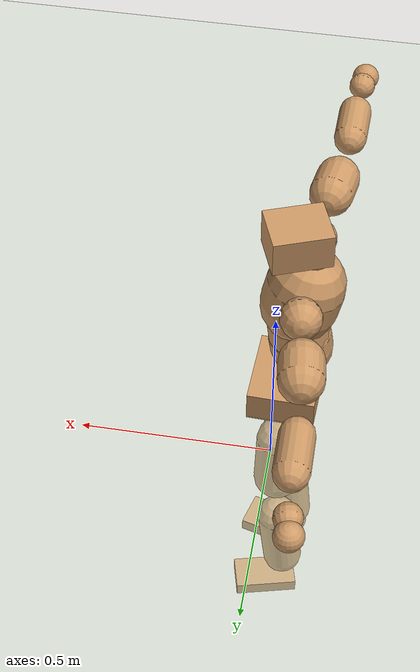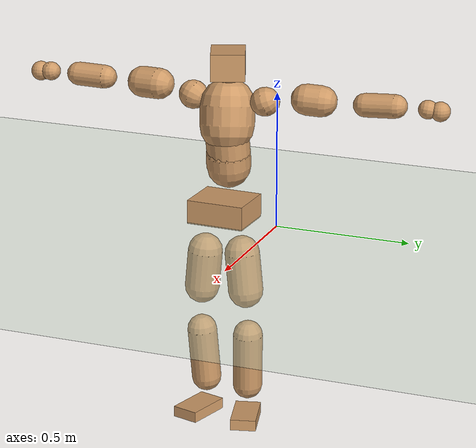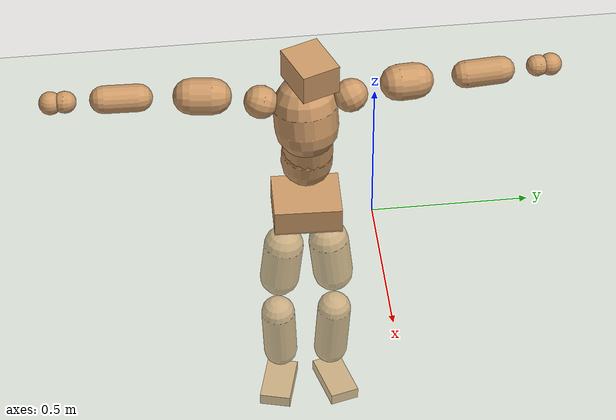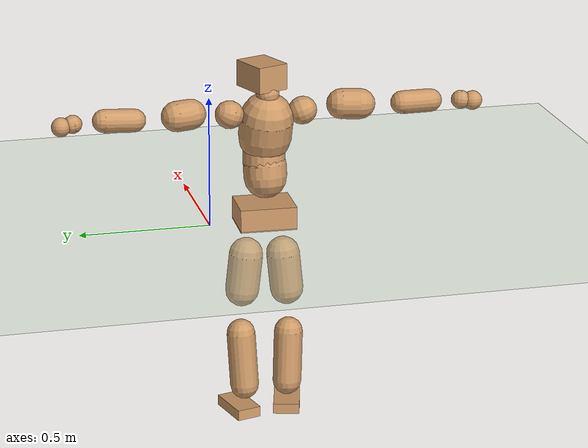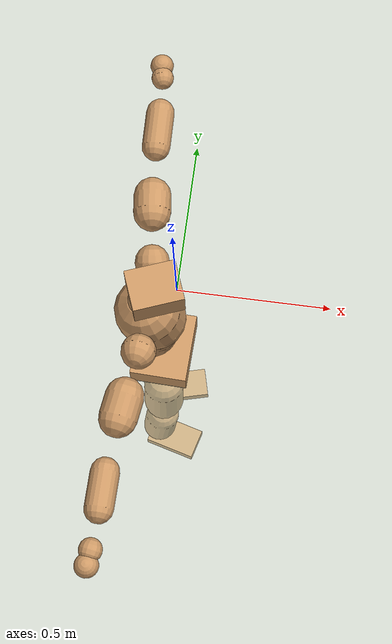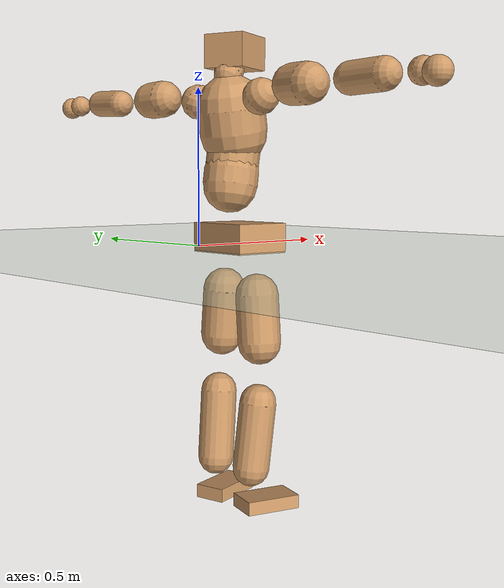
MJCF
<mujoco model="humanoid">
  <compiler coordinate="local" angle="radian"/>
  <default>
    <joint damping="0.0" armature="0.01" stiffness="0.0" limited="true"/>
    <geom conaffinity="1" condim="3" contype="7" margin="0.001" rgba="0.8 0.6 .4 1"/>
  </default>
  <asset>
    <texture type="skybox" builtin="gradient" rgb1=".4 .5 .6" rgb2="0 0 0" width="100" height="100"/>
    <texture builtin="flat" height="1278" mark="cross" markrgb="1 1 1" name="texgeom" random="0.01" rgb1="0.8 0.6 0.4" rgb2="0.8 0.6 0.4" type="cube" width="127"/>
    <texture builtin="checker" height="100" name="texplane" rgb1="0 0 0" rgb2="0.8 0.8 0.8" type="2d" width="100"/>
    <material name="MatPlane" reflectance="0.5" shininess="1" specular="1" texrepeat="60 60" texture="texplane"/>
    <material name="geom" texture="texgeom" texuniform="true"/>
  </asset>
  <worldbody>
    <light cutoff="100" diffuse="1 1 1" dir="-0 0 -1.3" directional="true" exponent="1" pos="0 0 1.3" specular=".1 .1 .1"/>
    <geom conaffinity="1" condim="3" name="floor" pos="0 0 0" rgba="0.8 0.9 0.8 1" size="100 100 .2" type="plane" material="MatPlane"/>
    <body name="Pelvis" pos="-0.0015 -0.2088 0.0452">
      <freejoint name="Pelvis"/>
      <geom type="box" contype="1" conaffinity="1" density="5359.374988" pos="-0.0106 0.0004 -0.0071" size="0.0891 0.1076 0.0442" quat="0.9998 0.0000 0.0000 -0.0175" name="Pelvis"/>
      <body name="L_Hip" pos="-0.0099 0.062 -0.0749">
        <joint name="L_Hip_x" type="hinge" pos="0 0 0" axis="1 0 0" stiffness="1600" damping="160" armature="0.02" range="-180.0000 180.0000"/>
        <joint name="L_Hip_y" type="hinge" pos="0 0 0" axis="0 1 0" stiffness="1600" damping="160" armature="0.02" range="-180.0000 180.0000"/>
        <joint name="L_Hip_z" type="hinge" pos="0 0 0" axis="0 0 1" stiffness="1600" damping="160" armature="0.02" range="-180.0000 180.0000"/>
        <geom type="capsule" contype="1" conaffinity="1" density="2040.816327" size="0.0646" fromto="0.0018 0.0100 -0.0941 0.0046 0.0253 -0.2373" name="L_Hip"/>
        <body name="L_Knee" pos="0.0064 0.0354 -0.3313">
          <joint name="L_Knee_x" type="hinge" pos="0 0 0" axis="1 0 0" stiffness="1600" damping="160" armature="0.02" range="-180.0000 180.0000"/>
          <joint name="L_Knee_y" type="hinge" pos="0 0 0" axis="0 1 0" stiffness="1600" damping="160" armature="0.02" range="-180.0000 180.0000"/>
          <joint name="L_Knee_z" type="hinge" pos="0 0 0" axis="0 0 1" stiffness="1600" damping="160" armature="0.02" range="-180.0000 180.0000"/>
          <geom type="capsule" contype="1" conaffinity="1" density="1234.567901" size="0.055" fromto="-0.0082 -0.0035 -0.0846 -0.0282 -0.0122 -0.2921" name="L_Knee"/>
          <body name="L_Ankle" pos="-0.0364 -0.0157 -0.3767">
            <joint name="L_Ankle_x" type="hinge" pos="0 0 0" axis="1 0 0" stiffness="1600" damping="160" armature="0.02" range="-180.0000 180.0000"/>
            <joint name="L_Ankle_y" type="hinge" pos="0 0 0" axis="0 1 0" stiffness="1600" damping="160" armature="0.02" range="-180.0000 180.0000"/>
            <joint name="L_Ankle_z" type="hinge" pos="0 0 0" axis="0 0 1" stiffness="1600" damping="160" armature="0.02" range="-180.0000 180.0000"/>
            <geom type="box" contype="1" conaffinity="1" density="999.999987" pos="0.0569 0.0148 -0.0261" size="0.0871 0.0475 0.0204" quat="0.9919 0.0000 0.0000 0.1270" name="L_Ankle"/>
            <body name="L_Toe" pos="0.1137 0.0296 -0.0522">
              <joint name="L_Toe_x" type="hinge" pos="0 0 0" axis="1 0 0" stiffness="1000" damping="100" armature="0.02" range="-180.0000 180.0000"/>
              <joint name="L_Toe_y" type="hinge" pos="0 0 0" axis="0 1 0" stiffness="1000" damping="100" armature="0.02" range="-180.0000 180.0000"/>
              <joint name="L_Toe_z" type="hinge" pos="0 0 0" axis="0 0 1" stiffness="1000" damping="100" armature="0.02" range="-180.0000 180.0000"/>
              <geom type="box" contype="1" conaffinity="1" density="9000226.375132" pos="0.0000 0.0000 0.0240" size="0.001 0.0024 0.0009" quat="0.9911 0.0000 0.0000 0.1329" name="L_Toe"/>
            </body>
          </body>
        </body>
      </body>
      <body name="R_Hip" pos="-0.0042 -0.0637 -0.0828">
        <joint name="R_Hip_x" type="hinge" pos="0 0 0" axis="1 0 0" stiffness="1600" damping="160" armature="0.02" range="-180.0000 180.0000"/>
        <joint name="R_Hip_y" type="hinge" pos="0 0 0" axis="0 1 0" stiffness="1600" damping="160" armature="0.02" range="-180.0000 180.0000"/>
        <joint name="R_Hip_z" type="hinge" pos="0 0 0" axis="0 0 1" stiffness="1600" damping="160" armature="0.02" range="-180.0000 180.0000"/>
        <geom type="capsule" contype="1" conaffinity="1" density="2040.816327" size="0.0641" fromto="-0.0017 -0.0094 -0.0936 -0.0043 -0.0236 -0.2357" name="R_Hip"/>
        <body name="R_Knee" pos="-0.006 -0.0329 -0.3293">
          <joint name="R_Knee_x" type="hinge" pos="0 0 0" axis="1 0 0" stiffness="1600" damping="160" armature="0.02" range="-180.0000 180.0000"/>
          <joint name="R_Knee_y" type="hinge" pos="0 0 0" axis="0 1 0" stiffness="1600" damping="160" armature="0.02" range="-180.0000 180.0000"/>
          <joint name="R_Knee_z" type="hinge" pos="0 0 0" axis="0 0 1" stiffness="1600" damping="160" armature="0.02" range="-180.0000 180.0000"/>
          <geom type="capsule" contype="1" conaffinity="1" density="1234.567901" size="0.0552" fromto="-0.0079 0.0041 -0.0847 -0.0264 0.0136 -0.2822" name="R_Knee"/>
          <body name="R_Ankle" pos="-0.0344 0.0176 -0.3669">
            <joint name="R_Ankle_x" type="hinge" pos="0 0 0" axis="1 0 0" stiffness="1600" damping="160" armature="0.02" range="-180.0000 180.0000"/>
            <joint name="R_Ankle_y" type="hinge" pos="0 0 0" axis="0 1 0" stiffness="1600" damping="160" armature="0.02" range="-180.0000 180.0000"/>
            <joint name="R_Ankle_z" type="hinge" pos="0 0 0" axis="0 0 1" stiffness="1600" damping="160" armature="0.02" range="-180.0000 180.0000"/>
            <geom type="box" contype="1" conaffinity="1" density="1000.000057" pos="0.0604 -0.0162 -0.0258" size="0.0849 0.0505 0.0202" quat="0.9914 0.0000 0.0000 -0.1311" name="R_Ankle"/>
            <body name="R_Toe" pos="0.1207 -0.0325 -0.0516">
              <joint name="R_Toe_x" type="hinge" pos="0 0 0" axis="1 0 0" stiffness="1000" damping="100" armature="0.02" range="-180.0000 180.0000"/>
              <joint name="R_Toe_y" type="hinge" pos="0 0 0" axis="0 1 0" stiffness="1000" damping="100" armature="0.02" range="-180.0000 180.0000"/>
              <joint name="R_Toe_z" type="hinge" pos="0 0 0" axis="0 0 1" stiffness="1000" damping="100" armature="0.02" range="-180.0000 180.0000"/>
              <geom type="box" contype="1" conaffinity="1" density="8257939.722085" pos="0.0000 0.0000 0.0246" size="0.0011 0.0026 0.0009" quat="0.9926 0.0000 0.0000 -0.1215" name="R_Toe"/>
            </body>
          </body>
        </body>
      </body>
      <body name="Torso" pos="-0.0497 0.0039 0.1153">
        <joint name="Torso_x" type="hinge" pos="0 0 0" axis="1 0 0" stiffness="2000" damping="200" armature="0.02" range="-180.0000 180.0000"/>
        <joint name="Torso_y" type="hinge" pos="0 0 0" axis="0 1 0" stiffness="2000" damping="200" armature="0.02" range="-180.0000 180.0000"/>
        <joint name="Torso_z" type="hinge" pos="0 0 0" axis="0 0 1" stiffness="2000" damping="200" armature="0.02" range="-180.0000 180.0000"/>
        <geom type="capsule" contype="1" conaffinity="1" density="2040.816327" size="0.0818" fromto="0.0124 0.0020 0.0808 0.0052 0.0009 0.0341" name="Torso"/>
        <body name="Spine" pos="0.0177 0.0029 0.1149">
          <joint name="Spine_x" type="hinge" pos="0 0 0" axis="1 0 0" stiffness="2000" damping="200" armature="0.02" range="-180.0000 180.0000"/>
          <joint name="Spine_y" type="hinge" pos="0 0 0" axis="0 1 0" stiffness="2000" damping="200" armature="0.02" range="-180.0000 180.0000"/>
          <joint name="Spine_z" type="hinge" pos="0 0 0" axis="0 0 1" stiffness="2000" damping="200" armature="0.02" range="-180.0000 180.0000"/>
          <geom type="capsule" contype="1" conaffinity="1" density="2040.816327" size="0.0796" fromto="0.0105 -0.0029 0.0788 -0.0043 0.0012 -0.0325" name="Spine"/>
          <body name="Chest" pos="0.0062 -0.0017 0.0463">
            <joint name="Chest_x" type="hinge" pos="0 0 0" axis="1 0 0" stiffness="2000" damping="200" armature="0.02" range="-180.0000 180.0000"/>
            <joint name="Chest_y" type="hinge" pos="0 0 0" axis="0 1 0" stiffness="2000" damping="200" armature="0.02" range="-180.0000 180.0000"/>
            <joint name="Chest_z" type="hinge" pos="0 0 0" axis="0 0 1" stiffness="2000" damping="200" armature="0.02" range="-180.0000 180.0000"/>
            <geom type="capsule" contype="1" conaffinity="1" density="2040.816327" size="0.1006" fromto="-0.0204 -0.0051 0.0984 -0.0060 -0.0015 0.0289" name="Chest"/>
            <body name="Neck" pos="-0.0436 -0.0108 0.1776">
              <joint name="Neck_x" type="hinge" pos="0 0 0" axis="1 0 0" stiffness="1000" damping="100" armature="0.02" range="-180.0000 180.0000"/>
              <joint name="Neck_y" type="hinge" pos="0 0 0" axis="0 1 0" stiffness="1000" damping="100" armature="0.02" range="-180.0000 180.0000"/>
              <joint name="Neck_z" type="hinge" pos="0 0 0" axis="0 0 1" stiffness="1000" damping="100" armature="0.02" range="-180.0000 180.0000"/>
              <geom type="capsule" contype="1" conaffinity="1" density="1000" size="0.0428" fromto="0.0212 0.0073 0.0364 0.0113 0.0039 0.0194" name="Neck"/>
              <body name="Head" pos="0.0324 0.0112 0.0558">
                <joint name="Head_x" type="hinge" pos="0 0 0" axis="1 0 0" stiffness="1000" damping="100" armature="0.02" range="-180.0000 180.0000"/>
                <joint name="Head_y" type="hinge" pos="0 0 0" axis="0 1 0" stiffness="1000" damping="100" armature="0.02" range="-180.0000 180.0000"/>
                <joint name="Head_z" type="hinge" pos="0 0 0" axis="0 0 1" stiffness="1000" damping="100" armature="0.02" range="-180.0000 180.0000"/>
                <geom type="box" contype="1" conaffinity="1" density="2250.000185" pos="0.0172 0.0066 0.0289" size="0.0758 0.0618 0.049" quat="0.9832 0.0000 0.0000 0.1825" name="Head"/>
              </body>
            </body>
            <body name="L_Thorax" pos="-0.0146 0.0733 0.1035">
              <joint name="L_Thorax_x" type="hinge" pos="0 0 0" axis="1 0 0" stiffness="1000" damping="100" armature="0.02" range="-180.0000 180.0000"/>
              <joint name="L_Thorax_y" type="hinge" pos="0 0 0" axis="0 1 0" stiffness="1000" damping="100" armature="0.02" range="-180.0000 180.0000"/>
              <joint name="L_Thorax_z" type="hinge" pos="0 0 0" axis="0 0 1" stiffness="1000" damping="100" armature="0.02" range="-180.0000 180.0000"/>
              <geom type="capsule" contype="1" conaffinity="1" density="1000" size="0.053" fromto="-0.0104 0.0632 0.0217 -0.0107 0.0650 0.0224" name="L_Thorax"/>
              <body name="L_Shoulder" pos="-0.0211 0.1282 0.0441">
                <joint name="L_Shoulder_x" type="hinge" pos="0 0 0" axis="1 0 0" stiffness="1000" damping="100" armature="0.02" range="-720.0000 720.0000"/>
                <joint name="L_Shoulder_y" type="hinge" pos="0 0 0" axis="0 1 0" stiffness="1000" damping="100" armature="0.02" range="-720.0000 720.0000"/>
                <joint name="L_Shoulder_z" type="hinge" pos="0 0 0" axis="0 0 1" stiffness="1000" damping="100" armature="0.02" range="-720.0000 720.0000"/>
                <geom type="capsule" contype="1" conaffinity="1" density="1000" size="0.057" fromto="-0.0104 0.0862 -0.0040 -0.0169 0.1400 -0.0065" name="L_Shoulder"/>
                <body name="L_Elbow" pos="-0.0274 0.2262 -0.0105">
                  <joint name="L_Elbow_x" type="hinge" pos="0 0 0" axis="1 0 0" stiffness="1000" damping="100" armature="0.02" range="-720.0000 720.0000"/>
                  <joint name="L_Elbow_y" type="hinge" pos="0 0 0" axis="0 1 0" stiffness="1000" damping="100" armature="0.02" range="-720.0000 720.0000"/>
                  <joint name="L_Elbow_z" type="hinge" pos="0 0 0" axis="0 0 1" stiffness="1000" damping="100" armature="0.02" range="-720.0000 720.0000"/>
                  <geom type="capsule" contype="1" conaffinity="1" density="1000" size="0.0431" fromto="-0.0014 0.0729 0.0040 -0.0035 0.1839 0.0100" name="L_Elbow"/>
                  <body name="L_Wrist" pos="-0.0049 0.2568 0.014">
                    <joint name="L_Wrist_x" type="hinge" pos="0 0 0" axis="1 0 0" stiffness="600" damping="60" armature="0.02" range="-180.0000 180.0000"/>
                    <joint name="L_Wrist_y" type="hinge" pos="0 0 0" axis="0 1 0" stiffness="600" damping="60" armature="0.02" range="-180.0000 180.0000"/>
                    <joint name="L_Wrist_z" type="hinge" pos="0 0 0" axis="0 0 1" stiffness="600" damping="60" armature="0.02" range="-180.0000 180.0000"/>
                    <geom type="capsule" contype="1" conaffinity="1" density="1000" size="0.0339" fromto="-0.0076 0.0424 -0.0052 -0.0080 0.0443 -0.0055" name="L_Wrist"/>
                    <body name="L_Hand" pos="-0.0156 0.0867 -0.0107">
                      <joint name="L_Hand_x" type="hinge" pos="0 0 0" axis="1 0 0" stiffness="600" damping="60" armature="0.02" range="-180.0000 180.0000"/>
                      <joint name="L_Hand_y" type="hinge" pos="0 0 0" axis="0 1 0" stiffness="600" damping="60" armature="0.02" range="-180.0000 180.0000"/>
                      <joint name="L_Hand_z" type="hinge" pos="0 0 0" axis="0 0 1" stiffness="600" damping="60" armature="0.02" range="-180.0000 180.0000"/>
                      <geom type="sphere" contype="1" conaffinity="1" density="1000" size="0.0354" pos="0.0000 0.0000 0.0000" name="L_Hand"/>
                    </body>
                  </body>
                </body>
              </body>
            </body>
            <body name="R_Thorax" pos="-0.0208 -0.0823 0.1009">
              <joint name="R_Thorax_x" type="hinge" pos="0 0 0" axis="1 0 0" stiffness="1000" damping="100" armature="0.02" range="-180.0000 180.0000"/>
              <joint name="R_Thorax_y" type="hinge" pos="0 0 0" axis="0 1 0" stiffness="1000" damping="100" armature="0.02" range="-180.0000 180.0000"/>
              <joint name="R_Thorax_z" type="hinge" pos="0 0 0" axis="0 0 1" stiffness="1000" damping="100" armature="0.02" range="-180.0000 180.0000"/>
              <geom type="capsule" contype="1" conaffinity="1" density="1000" size="0.0526" fromto="-0.0058 -0.0576 0.0228 -0.0060 -0.0595 0.0235" name="R_Thorax"/>
              <body name="R_Shoulder" pos="-0.0117 -0.1171 0.0463">
                <joint name="R_Shoulder_x" type="hinge" pos="0 0 0" axis="1 0 0" stiffness="1000" damping="100" armature="0.02" range="-720.0000 720.0000"/>
                <joint name="R_Shoulder_y" type="hinge" pos="0 0 0" axis="0 1 0" stiffness="1000" damping="100" armature="0.02" range="-720.0000 720.0000"/>
                <joint name="R_Shoulder_z" type="hinge" pos="0 0 0" axis="0 0 1" stiffness="1000" damping="100" armature="0.02" range="-720.0000 720.0000"/>
                <geom type="capsule" contype="1" conaffinity="1" density="1000" size="0.0574" fromto="-0.0128 -0.0865 -0.0026 -0.0227 -0.1538 -0.0046" name="R_Shoulder"/>
                <body name="R_Elbow" pos="-0.0355 -0.2403 -0.0072">
                  <joint name="R_Elbow_x" type="hinge" pos="0 0 0" axis="1 0 0" stiffness="1000" damping="100" armature="0.02" range="-720.0000 720.0000"/>
                  <joint name="R_Elbow_y" type="hinge" pos="0 0 0" axis="0 1 0" stiffness="1000" damping="100" armature="0.02" range="-720.0000 720.0000"/>
                  <joint name="R_Elbow_z" type="hinge" pos="0 0 0" axis="0 0 1" stiffness="1000" damping="100" armature="0.02" range="-720.0000 720.0000"/>
                  <geom type="capsule" contype="1" conaffinity="1" density="1000" size="0.0434" fromto="-0.0010 -0.0734 0.0010 -0.0025 -0.1820 0.0024" name="R_Elbow"/>
                  <body name="R_Wrist" pos="-0.0035 -0.2554 0.0034">
                    <joint name="R_Wrist_x" type="hinge" pos="0 0 0" axis="1 0 0" stiffness="600" damping="60" armature="0.02" range="-180.0000 180.0000"/>
                    <joint name="R_Wrist_y" type="hinge" pos="0 0 0" axis="0 1 0" stiffness="600" damping="60" armature="0.02" range="-180.0000 180.0000"/>
                    <joint name="R_Wrist_z" type="hinge" pos="0 0 0" axis="0 0 1" stiffness="600" damping="60" armature="0.02" range="-180.0000 180.0000"/>
                    <geom type="capsule" contype="1" conaffinity="1" density="1000" size="0.035" fromto="-0.0050 -0.0438 -0.0045 -0.0053 -0.0457 -0.0047" name="R_Wrist"/>
                    <body name="R_Hand" pos="-0.0103 -0.0895 -0.0091">
                      <joint name="R_Hand_x" type="hinge" pos="0 0 0" axis="1 0 0" stiffness="600" damping="60" armature="0.02" range="-180.0000 180.0000"/>
                      <joint name="R_Hand_y" type="hinge" pos="0 0 0" axis="0 1 0" stiffness="600" damping="60" armature="0.02" range="-180.0000 180.0000"/>
                      <joint name="R_Hand_z" type="hinge" pos="0 0 0" axis="0 0 1" stiffness="600" damping="60" armature="0.02" range="-180.0000 180.0000"/>
                      <geom type="sphere" contype="1" conaffinity="1" density="1000" size="0.0363" pos="0.0000 0.0000 0.0000" name="R_Hand"/>
                    </body>
                  </body>
                </body>
              </body>
            </body>
          </body>
        </body>
      </body>
    </body>
  </worldbody>
  <actuator>
    <motor name="L_Hip_x" joint="L_Hip_x" gear="500"/>
    <motor name="L_Hip_y" joint="L_Hip_y" gear="500"/>
    <motor name="L_Hip_z" joint="L_Hip_z" gear="500"/>
    <motor name="L_Knee_x" joint="L_Knee_x" gear="500"/>
    <motor name="L_Knee_y" joint="L_Knee_y" gear="500"/>
    <motor name="L_Knee_z" joint="L_Knee_z" gear="500"/>
    <motor name="L_Ankle_x" joint="L_Ankle_x" gear="500"/>
    <motor name="L_Ankle_y" joint="L_Ankle_y" gear="500"/>
    <motor name="L_Ankle_z" joint="L_Ankle_z" gear="500"/>
    <motor name="L_Toe_x" joint="L_Toe_x" gear="500"/>
    <motor name="L_Toe_y" joint="L_Toe_y" gear="500"/>
    <motor name="L_Toe_z" joint="L_Toe_z" gear="500"/>
    <motor name="R_Hip_x" joint="R_Hip_x" gear="500"/>
    <motor name="R_Hip_y" joint="R_Hip_y" gear="500"/>
    <motor name="R_Hip_z" joint="R_Hip_z" gear="500"/>
    <motor name="R_Knee_x" joint="R_Knee_x" gear="500"/>
    <motor name="R_Knee_y" joint="R_Knee_y" gear="500"/>
    <motor name="R_Knee_z" joint="R_Knee_z" gear="500"/>
    <motor name="R_Ankle_x" joint="R_Ankle_x" gear="500"/>
    <motor name="R_Ankle_y" joint="R_Ankle_y" gear="500"/>
    <motor name="R_Ankle_z" joint="R_Ankle_z" gear="500"/>
    <motor name="R_Toe_x" joint="R_Toe_x" gear="500"/>
    <motor name="R_Toe_y" joint="R_Toe_y" gear="500"/>
    <motor name="R_Toe_z" joint="R_Toe_z" gear="500"/>
    <motor name="Torso_x" joint="Torso_x" gear="500"/>
    <motor name="Torso_y" joint="Torso_y" gear="500"/>
    <motor name="Torso_z" joint="Torso_z" gear="500"/>
    <motor name="Spine_x" joint="Spine_x" gear="500"/>
    <motor name="Spine_y" joint="Spine_y" gear="500"/>
    <motor name="Spine_z" joint="Spine_z" gear="500"/>
    <motor name="Chest_x" joint="Chest_x" gear="500"/>
    <motor name="Chest_y" joint="Chest_y" gear="500"/>
    <motor name="Chest_z" joint="Chest_z" gear="500"/>
    <motor name="Neck_x" joint="Neck_x" gear="500"/>
    <motor name="Neck_y" joint="Neck_y" gear="500"/>
    <motor name="Neck_z" joint="Neck_z" gear="500"/>
    <motor name="Head_x" joint="Head_x" gear="500"/>
    <motor name="Head_y" joint="Head_y" gear="500"/>
    <motor name="Head_z" joint="Head_z" gear="500"/>
    <motor name="L_Thorax_x" joint="L_Thorax_x" gear="500"/>
    <motor name="L_Thorax_y" joint="L_Thorax_y" gear="500"/>
    <motor name="L_Thorax_z" joint="L_Thorax_z" gear="500"/>
    <motor name="L_Shoulder_x" joint="L_Shoulder_x" gear="500"/>
    <motor name="L_Shoulder_y" joint="L_Shoulder_y" gear="500"/>
    <motor name="L_Shoulder_z" joint="L_Shoulder_z" gear="500"/>
    <motor name="L_Elbow_x" joint="L_Elbow_x" gear="500"/>
    <motor name="L_Elbow_y" joint="L_Elbow_y" gear="500"/>
    <motor name="L_Elbow_z" joint="L_Elbow_z" gear="500"/>
    <motor name="L_Wrist_x" joint="L_Wrist_x" gear="500"/>
    <motor name="L_Wrist_y" joint="L_Wrist_y" gear="500"/>
    <motor name="L_Wrist_z" joint="L_Wrist_z" gear="500"/>
    <motor name="L_Hand_x" joint="L_Hand_x" gear="500"/>
    <motor name="L_Hand_y" joint="L_Hand_y" gear="500"/>
    <motor name="L_Hand_z" joint="L_Hand_z" gear="500"/>
    <motor name="R_Thorax_x" joint="R_Thorax_x" gear="500"/>
    <motor name="R_Thorax_y" joint="R_Thorax_y" gear="500"/>
    <motor name="R_Thorax_z" joint="R_Thorax_z" gear="500"/>
    <motor name="R_Shoulder_x" joint="R_Shoulder_x" gear="500"/>
    <motor name="R_Shoulder_y" joint="R_Shoulder_y" gear="500"/>
    <motor name="R_Shoulder_z" joint="R_Shoulder_z" gear="500"/>
    <motor name="R_Elbow_x" joint="R_Elbow_x" gear="500"/>
    <motor name="R_Elbow_y" joint="R_Elbow_y" gear="500"/>
    <motor name="R_Elbow_z" joint="R_Elbow_z" gear="500"/>
    <motor name="R_Wrist_x" joint="R_Wrist_x" gear="500"/>
    <motor name="R_Wrist_y" joint="R_Wrist_y" gear="500"/>
    <motor name="R_Wrist_z" joint="R_Wrist_z" gear="500"/>
    <motor name="R_Hand_x" joint="R_Hand_x" gear="500"/>
    <motor name="R_Hand_y" joint="R_Hand_y" gear="500"/>
    <motor name="R_Hand_z" joint="R_Hand_z" gear="500"/>
  </actuator>
  <contact>
    <exclude body1="Torso" body2="Chest"/>
    <exclude body1="Head" body2="Chest"/>
    <exclude body1="R_Knee" body2="R_Toe"/>
    <exclude body1="R_Knee" body2="L_Ankle"/>
    <exclude body1="R_Knee" body2="L_Toe"/>
    <exclude body1="L_Knee" body2="L_Toe"/>
    <exclude body1="L_Knee" body2="R_Ankle"/>
    <exclude body1="L_Knee" body2="R_Toe"/>
    <exclude body1="L_Shoulder" body2="Chest"/>
    <exclude body1="R_Shoulder" body2="Chest"/>
  </contact>
  <sensor/>
  <size njmax="700" nconmax="700"/>
</mujoco>
